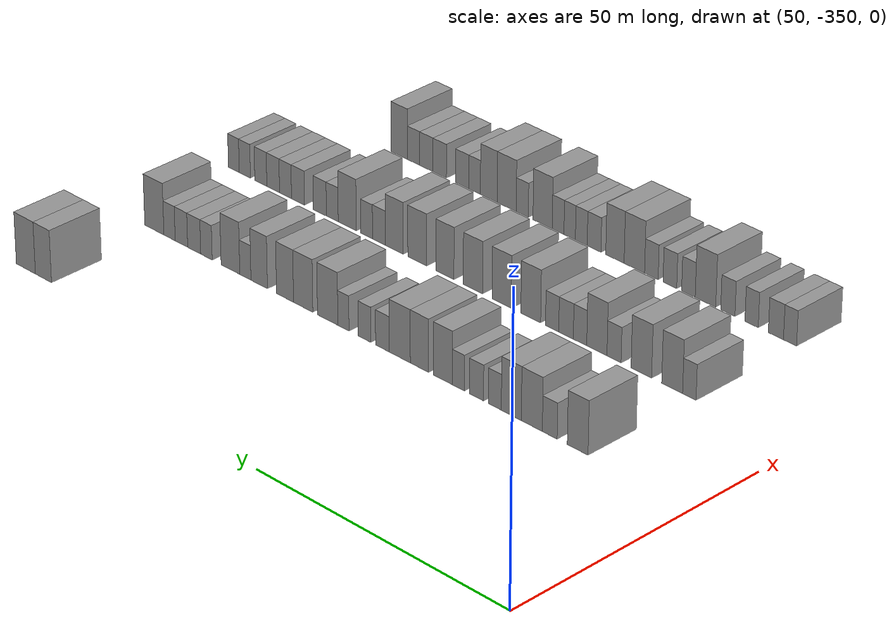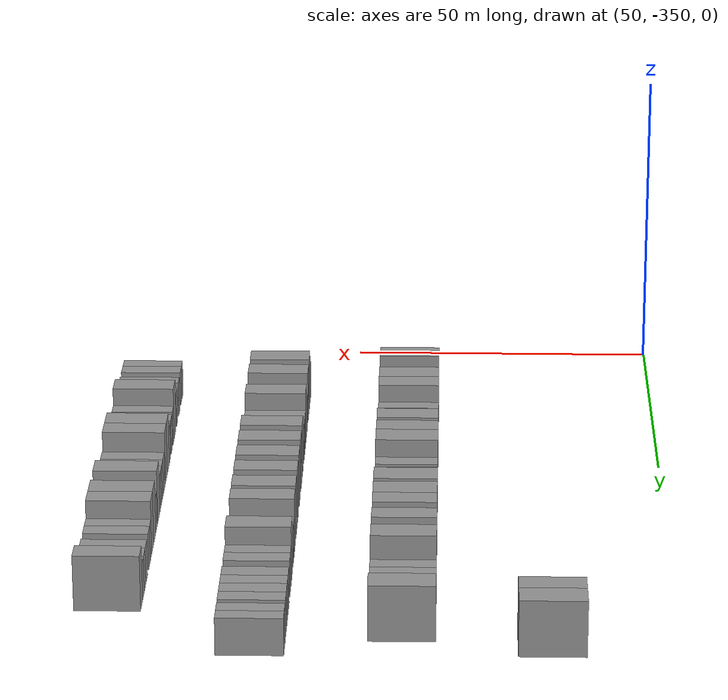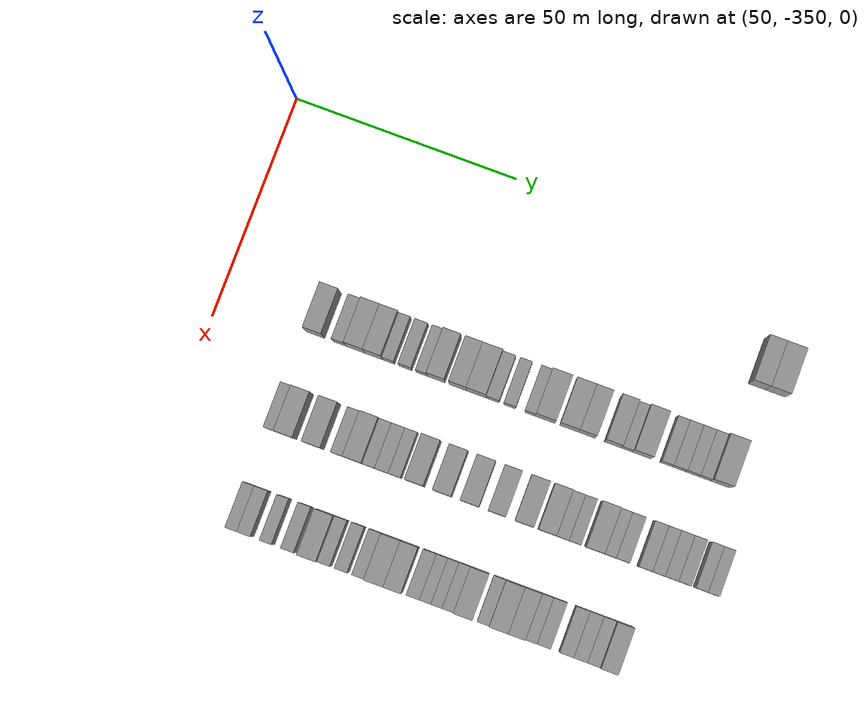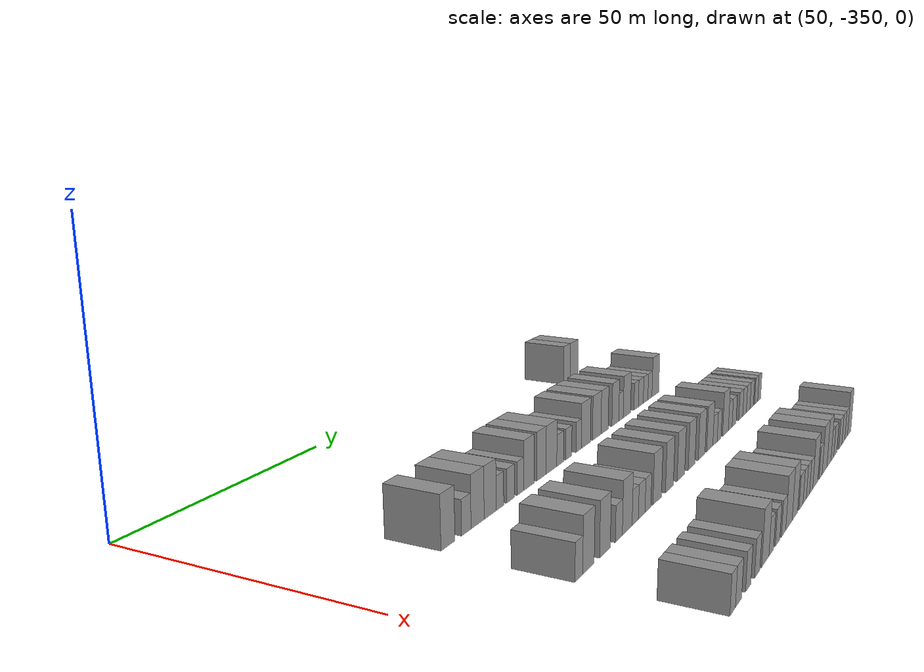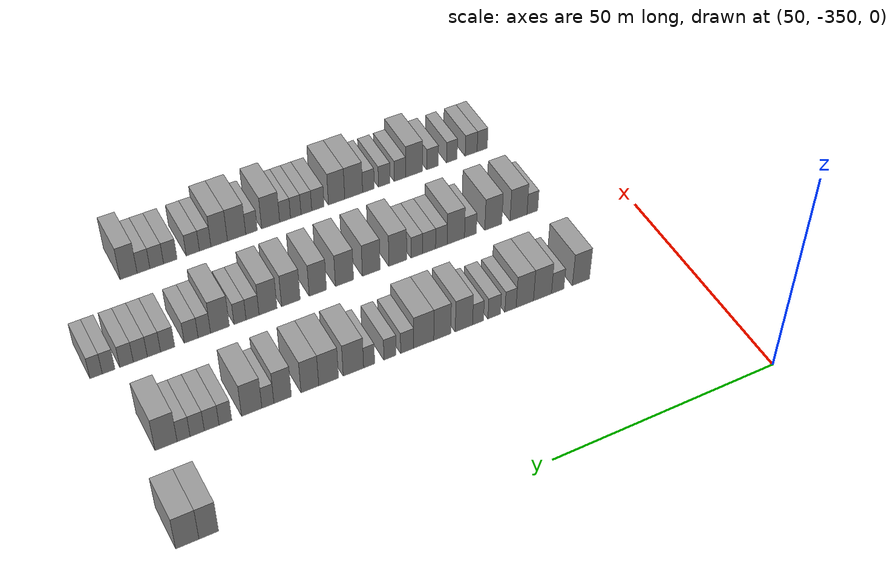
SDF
<sdf version="1.6">
 <world name="default">
  <model name="building_411">
   <static>1</static>
   <pose>69.0000 -237.1948 0 0.000000 0.000000 0.000000</pose>
   <link name="link">
    <pose>0 0 4.50 0 0 0</pose>
    <collision name="collision"><geometry><box><size>10.0000 3.7548 9.0000</size></box></geometry></collision>
    <visual name="visual">
     <cast_shadows>0</cast_shadows>
     <geometry><box><size>10.0000 3.7548 9.0000</size></box></geometry>
     <material>
      <script>
       <uri>model://grey_wall/materials/scripts</uri>
       <uri>model://grey_wall/materials/textures</uri>
       <name>vrc/grey_wall</name>
      </script>
     </material>
    </visual>
   </link>
  </model>
  <model name="building_412">
   <static>1</static>
   <pose>69.0000 -233.0890 0 0.000000 0.000000 0.000000</pose>
   <link name="link">
    <pose>0 0 4.50 0 0 0</pose>
    <collision name="collision"><geometry><box><size>10.0000 4.4567 9.0000</size></box></geometry></collision>
    <visual name="visual">
     <cast_shadows>0</cast_shadows>
     <geometry><box><size>10.0000 4.4567 9.0000</size></box></geometry>
     <material>
      <script>
       <uri>model://grey_wall/materials/scripts</uri>
       <uri>model://grey_wall/materials/textures</uri>
       <name>vrc/grey_wall</name>
      </script>
     </material>
    </visual>
   </link>
  </model>
  <model name="building_571">
   <static>1</static>
   <pose>91.0000 -328.0269 0 0.000000 0.000000 0.000000</pose>
   <link name="link">
    <pose>0 0 4.50 0 0 0</pose>
    <collision name="collision"><geometry><box><size>10.0000 4.0771 9.0000</size></box></geometry></collision>
    <visual name="visual">
     <cast_shadows>0</cast_shadows>
     <geometry><box><size>10.0000 4.0771 9.0000</size></box></geometry>
     <material>
      <script>
       <uri>model://grey_wall/materials/scripts</uri>
       <uri>model://grey_wall/materials/textures</uri>
       <name>vrc/grey_wall</name>
      </script>
     </material>
    </visual>
   </link>
  </model>
  <model name="building_572">
   <static>1</static>
   <pose>91.0000 -322.5203 0 0.000000 0.000000 0.000000</pose>
   <link name="link">
    <pose>0 0 3.00 0 0 0</pose>
    <collision name="collision"><geometry><box><size>10.0000 2.9361 6.0000</size></box></geometry></collision>
    <visual name="visual">
     <cast_shadows>0</cast_shadows>
     <geometry><box><size>10.0000 2.9361 6.0000</size></box></geometry>
     <material>
      <script>
       <uri>model://grey_wall/materials/scripts</uri>
       <uri>model://grey_wall/materials/textures</uri>
       <name>vrc/grey_wall</name>
      </script>
     </material>
    </visual>
   </link>
  </model>
  <model name="building_573">
   <static>1</static>
   <pose>91.0000 -318.9474 0 0.000000 0.000000 0.000000</pose>
   <link name="link">
    <pose>0 0 4.50 0 0 0</pose>
    <collision name="collision"><geometry><box><size>10.0000 4.2098 9.0000</size></box></geometry></collision>
    <visual name="visual">
     <cast_shadows>0</cast_shadows>
     <geometry><box><size>10.0000 4.2098 9.0000</size></box></geometry>
     <material>
      <script>
       <uri>model://grey_wall/materials/scripts</uri>
       <uri>model://grey_wall/materials/textures</uri>
       <name>vrc/grey_wall</name>
      </script>
     </material>
    </visual>
   </link>
  </model>
  <model name="building_574">
   <static>1</static>
   <pose>91.0000 -314.8272 0 0.000000 0.000000 0.000000</pose>
   <link name="link">
    <pose>0 0 4.50 0 0 0</pose>
    <collision name="collision"><geometry><box><size>10.0000 4.0307 9.0000</size></box></geometry></collision>
    <visual name="visual">
     <cast_shadows>0</cast_shadows>
     <geometry><box><size>10.0000 4.0307 9.0000</size></box></geometry>
     <material>
      <script>
       <uri>model://grey_wall/materials/scripts</uri>
       <uri>model://grey_wall/materials/textures</uri>
       <name>vrc/grey_wall</name>
      </script>
     </material>
    </visual>
   </link>
  </model>
  <model name="building_575">
   <static>1</static>
   <pose>91.0000 -311.5122 0 0.000000 0.000000 0.000000</pose>
   <link name="link">
    <pose>0 0 3.00 0 0 0</pose>
    <collision name="collision"><geometry><box><size>10.0000 2.5993 6.0000</size></box></geometry></collision>
    <visual name="visual">
     <cast_shadows>0</cast_shadows>
     <geometry><box><size>10.0000 2.5993 6.0000</size></box></geometry>
     <material>
      <script>
       <uri>model://grey_wall/materials/scripts</uri>
       <uri>model://grey_wall/materials/textures</uri>
       <name>vrc/grey_wall</name>
      </script>
     </material>
    </visual>
   </link>
  </model>
  <model name="building_576">
   <static>1</static>
   <pose>91.0000 -307.7695 0 0.000000 0.000000 0.000000</pose>
   <link name="link">
    <pose>0 0 3.00 0 0 0</pose>
    <collision name="collision"><geometry><box><size>10.0000 2.8862 6.0000</size></box></geometry></collision>
    <visual name="visual">
     <cast_shadows>0</cast_shadows>
     <geometry><box><size>10.0000 2.8862 6.0000</size></box></geometry>
     <material>
      <script>
       <uri>model://grey_wall/materials/scripts</uri>
       <uri>model://grey_wall/materials/textures</uri>
       <name>vrc/grey_wall</name>
      </script>
     </material>
    </visual>
   </link>
  </model>
  <model name="building_577">
   <static>1</static>
   <pose>91.0000 -304.0789 0 0.000000 0.000000 0.000000</pose>
   <link name="link">
    <pose>0 0 3.00 0 0 0</pose>
    <collision name="collision"><geometry><box><size>10.0000 2.4949 6.0000</size></box></geometry></collision>
    <visual name="visual">
     <cast_shadows>0</cast_shadows>
     <geometry><box><size>10.0000 2.4949 6.0000</size></box></geometry>
     <material>
      <script>
       <uri>model://grey_wall/materials/scripts</uri>
       <uri>model://grey_wall/materials/textures</uri>
       <name>vrc/grey_wall</name>
      </script>
     </material>
    </visual>
   </link>
  </model>
  <model name="building_578">
   <static>1</static>
   <pose>91.0000 -300.8722 0 0.000000 0.000000 0.000000</pose>
   <link name="link">
    <pose>0 0 4.50 0 0 0</pose>
    <collision name="collision"><geometry><box><size>10.0000 3.9184 9.0000</size></box></geometry></collision>
    <visual name="visual">
     <cast_shadows>0</cast_shadows>
     <geometry><box><size>10.0000 3.9184 9.0000</size></box></geometry>
     <material>
      <script>
       <uri>model://grey_wall/materials/scripts</uri>
       <uri>model://grey_wall/materials/textures</uri>
       <name>vrc/grey_wall</name>
      </script>
     </material>
    </visual>
   </link>
  </model>
  <model name="building_579">
   <static>1</static>
   <pose>91.0000 -296.0052 0 0.000000 0.000000 0.000000</pose>
   <link name="link">
    <pose>0 0 4.50 0 0 0</pose>
    <collision name="collision"><geometry><box><size>10.0000 3.8156 9.0000</size></box></geometry></collision>
    <visual name="visual">
     <cast_shadows>0</cast_shadows>
     <geometry><box><size>10.0000 3.8156 9.0000</size></box></geometry>
     <material>
      <script>
       <uri>model://grey_wall/materials/scripts</uri>
       <uri>model://grey_wall/materials/textures</uri>
       <name>vrc/grey_wall</name>
      </script>
     </material>
    </visual>
   </link>
  </model>
  <model name="building_580">
   <static>1</static>
   <pose>91.0000 -291.8831 0 0.000000 0.000000 0.000000</pose>
   <link name="link">
    <pose>0 0 4.50 0 0 0</pose>
    <collision name="collision"><geometry><box><size>10.0000 4.4286 9.0000</size></box></geometry></collision>
    <visual name="visual">
     <cast_shadows>0</cast_shadows>
     <geometry><box><size>10.0000 4.4286 9.0000</size></box></geometry>
     <material>
      <script>
       <uri>model://grey_wall/materials/scripts</uri>
       <uri>model://grey_wall/materials/textures</uri>
       <name>vrc/grey_wall</name>
      </script>
     </material>
    </visual>
   </link>
  </model>
  <model name="building_581">
   <static>1</static>
   <pose>91.0000 -288.2181 0 0.000000 0.000000 0.000000</pose>
   <link name="link">
    <pose>0 0 3.00 0 0 0</pose>
    <collision name="collision"><geometry><box><size>10.0000 2.9015 6.0000</size></box></geometry></collision>
    <visual name="visual">
     <cast_shadows>0</cast_shadows>
     <geometry><box><size>10.0000 2.9015 6.0000</size></box></geometry>
     <material>
      <script>
       <uri>model://grey_wall/materials/scripts</uri>
       <uri>model://grey_wall/materials/textures</uri>
       <name>vrc/grey_wall</name>
      </script>
     </material>
    </visual>
   </link>
  </model>
  <model name="building_582">
   <static>1</static>
   <pose>91.0000 -284.4340 0 0.000000 0.000000 0.000000</pose>
   <link name="link">
    <pose>0 0 3.00 0 0 0</pose>
    <collision name="collision"><geometry><box><size>10.0000 2.6668 6.0000</size></box></geometry></collision>
    <visual name="visual">
     <cast_shadows>0</cast_shadows>
     <geometry><box><size>10.0000 2.6668 6.0000</size></box></geometry>
     <material>
      <script>
       <uri>model://grey_wall/materials/scripts</uri>
       <uri>model://grey_wall/materials/textures</uri>
       <name>vrc/grey_wall</name>
      </script>
     </material>
    </visual>
   </link>
  </model>
  <model name="building_583">
   <static>1</static>
   <pose>91.0000 -279.8989 0 0.000000 0.000000 0.000000</pose>
   <link name="link">
    <pose>0 0 3.00 0 0 0</pose>
    <collision name="collision"><geometry><box><size>10.0000 2.4034 6.0000</size></box></geometry></collision>
    <visual name="visual">
     <cast_shadows>0</cast_shadows>
     <geometry><box><size>10.0000 2.4034 6.0000</size></box></geometry>
     <material>
      <script>
       <uri>model://grey_wall/materials/scripts</uri>
       <uri>model://grey_wall/materials/textures</uri>
       <name>vrc/grey_wall</name>
      </script>
     </material>
    </visual>
   </link>
  </model>
  <model name="building_584">
   <static>1</static>
   <pose>91.0000 -276.4935 0 0.000000 0.000000 0.000000</pose>
   <link name="link">
    <pose>0 0 4.50 0 0 0</pose>
    <collision name="collision"><geometry><box><size>10.0000 4.4073 9.0000</size></box></geometry></collision>
    <visual name="visual">
     <cast_shadows>0</cast_shadows>
     <geometry><box><size>10.0000 4.4073 9.0000</size></box></geometry>
     <material>
      <script>
       <uri>model://grey_wall/materials/scripts</uri>
       <uri>model://grey_wall/materials/textures</uri>
       <name>vrc/grey_wall</name>
      </script>
     </material>
    </visual>
   </link>
  </model>
  <model name="building_585">
   <static>1</static>
   <pose>91.0000 -271.1800 0 0.000000 0.000000 0.000000</pose>
   <link name="link">
    <pose>0 0 4.50 0 0 0</pose>
    <collision name="collision"><geometry><box><size>10.0000 4.2196 9.0000</size></box></geometry></collision>
    <visual name="visual">
     <cast_shadows>0</cast_shadows>
     <geometry><box><size>10.0000 4.2196 9.0000</size></box></geometry>
     <material>
      <script>
       <uri>model://grey_wall/materials/scripts</uri>
       <uri>model://grey_wall/materials/textures</uri>
       <name>vrc/grey_wall</name>
      </script>
     </material>
    </visual>
   </link>
  </model>
  <model name="building_586">
   <static>1</static>
   <pose>91.0000 -267.1969 0 0.000000 0.000000 0.000000</pose>
   <link name="link">
    <pose>0 0 4.50 0 0 0</pose>
    <collision name="collision"><geometry><box><size>10.0000 3.7467 9.0000</size></box></geometry></collision>
    <visual name="visual">
     <cast_shadows>0</cast_shadows>
     <geometry><box><size>10.0000 3.7467 9.0000</size></box></geometry>
     <material>
      <script>
       <uri>model://grey_wall/materials/scripts</uri>
       <uri>model://grey_wall/materials/textures</uri>
       <name>vrc/grey_wall</name>
      </script>
     </material>
    </visual>
   </link>
  </model>
  <model name="building_587">
   <static>1</static>
   <pose>91.0000 -261.4858 0 0.000000 0.000000 0.000000</pose>
   <link name="link">
    <pose>0 0 4.50 0 0 0</pose>
    <collision name="collision"><geometry><box><size>10.0000 3.6754 9.0000</size></box></geometry></collision>
    <visual name="visual">
     <cast_shadows>0</cast_shadows>
     <geometry><box><size>10.0000 3.6754 9.0000</size></box></geometry>
     <material>
      <script>
       <uri>model://grey_wall/materials/scripts</uri>
       <uri>model://grey_wall/materials/textures</uri>
       <name>vrc/grey_wall</name>
      </script>
     </material>
    </visual>
   </link>
  </model>
  <model name="building_588">
   <static>1</static>
   <pose>91.0000 -258.4003 0 0.000000 0.000000 0.000000</pose>
   <link name="link">
    <pose>0 0 3.00 0 0 0</pose>
    <collision name="collision"><geometry><box><size>10.0000 2.4956 6.0000</size></box></geometry></collision>
    <visual name="visual">
     <cast_shadows>0</cast_shadows>
     <geometry><box><size>10.0000 2.4956 6.0000</size></box></geometry>
     <material>
      <script>
       <uri>model://grey_wall/materials/scripts</uri>
       <uri>model://grey_wall/materials/textures</uri>
       <name>vrc/grey_wall</name>
      </script>
     </material>
    </visual>
   </link>
  </model>
  <model name="building_589">
   <static>1</static>
   <pose>91.0000 -255.0483 0 0.000000 0.000000 0.000000</pose>
   <link name="link">
    <pose>0 0 4.50 0 0 0</pose>
    <collision name="collision"><geometry><box><size>10.0000 4.2083 9.0000</size></box></geometry></collision>
    <visual name="visual">
     <cast_shadows>0</cast_shadows>
     <geometry><box><size>10.0000 4.2083 9.0000</size></box></geometry>
     <material>
      <script>
       <uri>model://grey_wall/materials/scripts</uri>
       <uri>model://grey_wall/materials/textures</uri>
       <name>vrc/grey_wall</name>
      </script>
     </material>
    </visual>
   </link>
  </model>
  <model name="building_590">
   <static>1</static>
   <pose>91.0000 -249.6351 0 0.000000 0.000000 0.000000</pose>
   <link name="link">
    <pose>0 0 3.00 0 0 0</pose>
    <collision name="collision"><geometry><box><size>10.0000 2.6181 6.0000</size></box></geometry></collision>
    <visual name="visual">
     <cast_shadows>0</cast_shadows>
     <geometry><box><size>10.0000 2.6181 6.0000</size></box></geometry>
     <material>
      <script>
       <uri>model://grey_wall/materials/scripts</uri>
       <uri>model://grey_wall/materials/textures</uri>
       <name>vrc/grey_wall</name>
      </script>
     </material>
    </visual>
   </link>
  </model>
  <model name="building_591">
   <static>1</static>
   <pose>91.0000 -246.8352 0 0.000000 0.000000 0.000000</pose>
   <link name="link">
    <pose>0 0 3.00 0 0 0</pose>
    <collision name="collision"><geometry><box><size>10.0000 2.9816 6.0000</size></box></geometry></collision>
    <visual name="visual">
     <cast_shadows>0</cast_shadows>
     <geometry><box><size>10.0000 2.9816 6.0000</size></box></geometry>
     <material>
      <script>
       <uri>model://grey_wall/materials/scripts</uri>
       <uri>model://grey_wall/materials/textures</uri>
       <name>vrc/grey_wall</name>
      </script>
     </material>
    </visual>
   </link>
  </model>
  <model name="building_592">
   <static>1</static>
   <pose>91.0000 -243.9129 0 0.000000 0.000000 0.000000</pose>
   <link name="link">
    <pose>0 0 3.00 0 0 0</pose>
    <collision name="collision"><geometry><box><size>10.0000 2.8630 6.0000</size></box></geometry></collision>
    <visual name="visual">
     <cast_shadows>0</cast_shadows>
     <geometry><box><size>10.0000 2.8630 6.0000</size></box></geometry>
     <material>
      <script>
       <uri>model://grey_wall/materials/scripts</uri>
       <uri>model://grey_wall/materials/textures</uri>
       <name>vrc/grey_wall</name>
      </script>
     </material>
    </visual>
   </link>
  </model>
  <model name="building_593">
   <static>1</static>
   <pose>91.0000 -241.1825 0 0.000000 0.000000 0.000000</pose>
   <link name="link">
    <pose>0 0 3.00 0 0 0</pose>
    <collision name="collision"><geometry><box><size>10.0000 2.5979 6.0000</size></box></geometry></collision>
    <visual name="visual">
     <cast_shadows>0</cast_shadows>
     <geometry><box><size>10.0000 2.5979 6.0000</size></box></geometry>
     <material>
      <script>
       <uri>model://grey_wall/materials/scripts</uri>
       <uri>model://grey_wall/materials/textures</uri>
       <name>vrc/grey_wall</name>
      </script>
     </material>
    </visual>
   </link>
  </model>
  <model name="building_594">
   <static>1</static>
   <pose>91.0000 -237.6687 0 0.000000 0.000000 0.000000</pose>
   <link name="link">
    <pose>0 0 4.50 0 0 0</pose>
    <collision name="collision"><geometry><box><size>10.0000 4.4295 9.0000</size></box></geometry></collision>
    <visual name="visual">
     <cast_shadows>0</cast_shadows>
     <geometry><box><size>10.0000 4.4295 9.0000</size></box></geometry>
     <material>
      <script>
       <uri>model://grey_wall/materials/scripts</uri>
       <uri>model://grey_wall/materials/textures</uri>
       <name>vrc/grey_wall</name>
      </script>
     </material>
    </visual>
   </link>
  </model>
  <model name="building_755">
   <static>1</static>
   <pose>113.0000 -329.3230 0 0.000000 0.000000 0.000000</pose>
   <link name="link">
    <pose>0 0 3.00 0 0 0</pose>
    <collision name="collision"><geometry><box><size>10.0000 2.6471 6.0000</size></box></geometry></collision>
    <visual name="visual">
     <cast_shadows>0</cast_shadows>
     <geometry><box><size>10.0000 2.6471 6.0000</size></box></geometry>
     <material>
      <script>
       <uri>model://grey_wall/materials/scripts</uri>
       <uri>model://grey_wall/materials/textures</uri>
       <name>vrc/grey_wall</name>
      </script>
     </material>
    </visual>
   </link>
  </model>
  <model name="building_756">
   <static>1</static>
   <pose>113.0000 -325.9396 0 0.000000 0.000000 0.000000</pose>
   <link name="link">
    <pose>0 0 4.50 0 0 0</pose>
    <collision name="collision"><geometry><box><size>10.0000 4.1198 9.0000</size></box></geometry></collision>
    <visual name="visual">
     <cast_shadows>0</cast_shadows>
     <geometry><box><size>10.0000 4.1198 9.0000</size></box></geometry>
     <material>
      <script>
       <uri>model://grey_wall/materials/scripts</uri>
       <uri>model://grey_wall/materials/textures</uri>
       <name>vrc/grey_wall</name>
      </script>
     </material>
    </visual>
   </link>
  </model>
  <model name="building_757">
   <static>1</static>
   <pose>113.0000 -319.8304 0 0.000000 0.000000 0.000000</pose>
   <link name="link">
    <pose>0 0 4.50 0 0 0</pose>
    <collision name="collision"><geometry><box><size>10.0000 4.0986 9.0000</size></box></geometry></collision>
    <visual name="visual">
     <cast_shadows>0</cast_shadows>
     <geometry><box><size>10.0000 4.0986 9.0000</size></box></geometry>
     <material>
      <script>
       <uri>model://grey_wall/materials/scripts</uri>
       <uri>model://grey_wall/materials/textures</uri>
       <name>vrc/grey_wall</name>
      </script>
     </material>
    </visual>
   </link>
  </model>
  <model name="building_758">
   <static>1</static>
   <pose>113.0000 -314.3562 0 0.000000 0.000000 0.000000</pose>
   <link name="link">
    <pose>0 0 3.00 0 0 0</pose>
    <collision name="collision"><geometry><box><size>10.0000 2.8499 6.0000</size></box></geometry></collision>
    <visual name="visual">
     <cast_shadows>0</cast_shadows>
     <geometry><box><size>10.0000 2.8499 6.0000</size></box></geometry>
     <material>
      <script>
       <uri>model://grey_wall/materials/scripts</uri>
       <uri>model://grey_wall/materials/textures</uri>
       <name>vrc/grey_wall</name>
      </script>
     </material>
    </visual>
   </link>
  </model>
  <model name="building_759">
   <static>1</static>
   <pose>113.0000 -310.8762 0 0.000000 0.000000 0.000000</pose>
   <link name="link">
    <pose>0 0 4.50 0 0 0</pose>
    <collision name="collision"><geometry><box><size>10.0000 4.1100 9.0000</size></box></geometry></collision>
    <visual name="visual">
     <cast_shadows>0</cast_shadows>
     <geometry><box><size>10.0000 4.1100 9.0000</size></box></geometry>
     <material>
      <script>
       <uri>model://grey_wall/materials/scripts</uri>
       <uri>model://grey_wall/materials/textures</uri>
       <name>vrc/grey_wall</name>
      </script>
     </material>
    </visual>
   </link>
  </model>
  <model name="building_760">
   <static>1</static>
   <pose>113.0000 -307.4540 0 0.000000 0.000000 0.000000</pose>
   <link name="link">
    <pose>0 0 3.00 0 0 0</pose>
    <collision name="collision"><geometry><box><size>10.0000 2.7344 6.0000</size></box></geometry></collision>
    <visual name="visual">
     <cast_shadows>0</cast_shadows>
     <geometry><box><size>10.0000 2.7344 6.0000</size></box></geometry>
     <material>
      <script>
       <uri>model://grey_wall/materials/scripts</uri>
       <uri>model://grey_wall/materials/textures</uri>
       <name>vrc/grey_wall</name>
      </script>
     </material>
    </visual>
   </link>
  </model>
  <model name="building_761">
   <static>1</static>
   <pose>113.0000 -304.5899 0 0.000000 0.000000 0.000000</pose>
   <link name="link">
    <pose>0 0 3.00 0 0 0</pose>
    <collision name="collision"><geometry><box><size>10.0000 2.9938 6.0000</size></box></geometry></collision>
    <visual name="visual">
     <cast_shadows>0</cast_shadows>
     <geometry><box><size>10.0000 2.9938 6.0000</size></box></geometry>
     <material>
      <script>
       <uri>model://grey_wall/materials/scripts</uri>
       <uri>model://grey_wall/materials/textures</uri>
       <name>vrc/grey_wall</name>
      </script>
     </material>
    </visual>
   </link>
  </model>
  <model name="building_762">
   <static>1</static>
   <pose>113.0000 -301.7258 0 0.000000 0.000000 0.000000</pose>
   <link name="link">
    <pose>0 0 3.00 0 0 0</pose>
    <collision name="collision"><geometry><box><size>10.0000 2.7342 6.0000</size></box></geometry></collision>
    <visual name="visual">
     <cast_shadows>0</cast_shadows>
     <geometry><box><size>10.0000 2.7342 6.0000</size></box></geometry>
     <material>
      <script>
       <uri>model://grey_wall/materials/scripts</uri>
       <uri>model://grey_wall/materials/textures</uri>
       <name>vrc/grey_wall</name>
      </script>
     </material>
    </visual>
   </link>
  </model>
  <model name="building_763">
   <static>1</static>
   <pose>113.0000 -297.2979 0 0.000000 0.000000 0.000000</pose>
   <link name="link">
    <pose>0 0 4.50 0 0 0</pose>
    <collision name="collision"><geometry><box><size>10.0000 4.1217 9.0000</size></box></geometry></collision>
    <visual name="visual">
     <cast_shadows>0</cast_shadows>
     <geometry><box><size>10.0000 4.1217 9.0000</size></box></geometry>
     <material>
      <script>
       <uri>model://grey_wall/materials/scripts</uri>
       <uri>model://grey_wall/materials/textures</uri>
       <name>vrc/grey_wall</name>
      </script>
     </material>
    </visual>
   </link>
  </model>
  <model name="building_764">
   <static>1</static>
   <pose>113.0000 -291.2049 0 0.000000 0.000000 0.000000</pose>
   <link name="link">
    <pose>0 0 4.50 0 0 0</pose>
    <collision name="collision"><geometry><box><size>10.0000 4.0642 9.0000</size></box></geometry></collision>
    <visual name="visual">
     <cast_shadows>0</cast_shadows>
     <geometry><box><size>10.0000 4.0642 9.0000</size></box></geometry>
     <material>
      <script>
       <uri>model://grey_wall/materials/scripts</uri>
       <uri>model://grey_wall/materials/textures</uri>
       <name>vrc/grey_wall</name>
      </script>
     </material>
    </visual>
   </link>
  </model>
  <model name="building_765">
   <static>1</static>
   <pose>113.0000 -285.1212 0 0.000000 0.000000 0.000000</pose>
   <link name="link">
    <pose>0 0 4.50 0 0 0</pose>
    <collision name="collision"><geometry><box><size>10.0000 4.1030 9.0000</size></box></geometry></collision>
    <visual name="visual">
     <cast_shadows>0</cast_shadows>
     <geometry><box><size>10.0000 4.1030 9.0000</size></box></geometry>
     <material>
      <script>
       <uri>model://grey_wall/materials/scripts</uri>
       <uri>model://grey_wall/materials/textures</uri>
       <name>vrc/grey_wall</name>
      </script>
     </material>
    </visual>
   </link>
  </model>
  <model name="building_766">
   <static>1</static>
   <pose>113.0000 -279.1335 0 0.000000 0.000000 0.000000</pose>
   <link name="link">
    <pose>0 0 4.50 0 0 0</pose>
    <collision name="collision"><geometry><box><size>10.0000 3.8724 9.0000</size></box></geometry></collision>
    <visual name="visual">
     <cast_shadows>0</cast_shadows>
     <geometry><box><size>10.0000 3.8724 9.0000</size></box></geometry>
     <material>
      <script>
       <uri>model://grey_wall/materials/scripts</uri>
       <uri>model://grey_wall/materials/textures</uri>
       <name>vrc/grey_wall</name>
      </script>
     </material>
    </visual>
   </link>
  </model>
  <model name="building_767">
   <static>1</static>
   <pose>113.0000 -273.1442 0 0.000000 0.000000 0.000000</pose>
   <link name="link">
    <pose>0 0 4.50 0 0 0</pose>
    <collision name="collision"><geometry><box><size>10.0000 4.1061 9.0000</size></box></geometry></collision>
    <visual name="visual">
     <cast_shadows>0</cast_shadows>
     <geometry><box><size>10.0000 4.1061 9.0000</size></box></geometry>
     <material>
      <script>
       <uri>model://grey_wall/materials/scripts</uri>
       <uri>model://grey_wall/materials/textures</uri>
       <name>vrc/grey_wall</name>
      </script>
     </material>
    </visual>
   </link>
  </model>
  <model name="building_768">
   <static>1</static>
   <pose>113.0000 -268.1210 0 0.000000 0.000000 0.000000</pose>
   <link name="link">
    <pose>0 0 4.50 0 0 0</pose>
    <collision name="collision"><geometry><box><size>10.0000 3.9403 9.0000</size></box></geometry></collision>
    <visual name="visual">
     <cast_shadows>0</cast_shadows>
     <geometry><box><size>10.0000 3.9403 9.0000</size></box></geometry>
     <material>
      <script>
       <uri>model://grey_wall/materials/scripts</uri>
       <uri>model://grey_wall/materials/textures</uri>
       <name>vrc/grey_wall</name>
      </script>
     </material>
    </visual>
   </link>
  </model>
  <model name="building_769">
   <static>1</static>
   <pose>113.0000 -264.7407 0 0.000000 0.000000 0.000000</pose>
   <link name="link">
    <pose>0 0 3.00 0 0 0</pose>
    <collision name="collision"><geometry><box><size>10.0000 2.8204 6.0000</size></box></geometry></collision>
    <visual name="visual">
     <cast_shadows>0</cast_shadows>
     <geometry><box><size>10.0000 2.8204 6.0000</size></box></geometry>
     <material>
      <script>
       <uri>model://grey_wall/materials/scripts</uri>
       <uri>model://grey_wall/materials/textures</uri>
       <name>vrc/grey_wall</name>
      </script>
     </material>
    </visual>
   </link>
  </model>
  <model name="building_770">
   <static>1</static>
   <pose>113.0000 -262.0262 0 0.000000 0.000000 0.000000</pose>
   <link name="link">
    <pose>0 0 3.00 0 0 0</pose>
    <collision name="collision"><geometry><box><size>10.0000 2.6085 6.0000</size></box></geometry></collision>
    <visual name="visual">
     <cast_shadows>0</cast_shadows>
     <geometry><box><size>10.0000 2.6085 6.0000</size></box></geometry>
     <material>
      <script>
       <uri>model://grey_wall/materials/scripts</uri>
       <uri>model://grey_wall/materials/textures</uri>
       <name>vrc/grey_wall</name>
      </script>
     </material>
    </visual>
   </link>
  </model>
  <model name="building_771">
   <static>1</static>
   <pose>113.0000 -257.7062 0 0.000000 0.000000 0.000000</pose>
   <link name="link">
    <pose>0 0 4.50 0 0 0</pose>
    <collision name="collision"><geometry><box><size>10.0000 4.0316 9.0000</size></box></geometry></collision>
    <visual name="visual">
     <cast_shadows>0</cast_shadows>
     <geometry><box><size>10.0000 4.0316 9.0000</size></box></geometry>
     <material>
      <script>
       <uri>model://grey_wall/materials/scripts</uri>
       <uri>model://grey_wall/materials/textures</uri>
       <name>vrc/grey_wall</name>
      </script>
     </material>
    </visual>
   </link>
  </model>
  <model name="building_772">
   <static>1</static>
   <pose>113.0000 -254.3630 0 0.000000 0.000000 0.000000</pose>
   <link name="link">
    <pose>0 0 3.00 0 0 0</pose>
    <collision name="collision"><geometry><box><size>10.0000 2.6547 6.0000</size></box></geometry></collision>
    <visual name="visual">
     <cast_shadows>0</cast_shadows>
     <geometry><box><size>10.0000 2.6547 6.0000</size></box></geometry>
     <material>
      <script>
       <uri>model://grey_wall/materials/scripts</uri>
       <uri>model://grey_wall/materials/textures</uri>
       <name>vrc/grey_wall</name>
      </script>
     </material>
    </visual>
   </link>
  </model>
  <model name="building_773">
   <static>1</static>
   <pose>113.0000 -251.5645 0 0.000000 0.000000 0.000000</pose>
   <link name="link">
    <pose>0 0 3.00 0 0 0</pose>
    <collision name="collision"><geometry><box><size>10.0000 2.9424 6.0000</size></box></geometry></collision>
    <visual name="visual">
     <cast_shadows>0</cast_shadows>
     <geometry><box><size>10.0000 2.9424 6.0000</size></box></geometry>
     <material>
      <script>
       <uri>model://grey_wall/materials/scripts</uri>
       <uri>model://grey_wall/materials/textures</uri>
       <name>vrc/grey_wall</name>
      </script>
     </material>
    </visual>
   </link>
  </model>
  <model name="building_774">
   <static>1</static>
   <pose>113.0000 -246.6026 0 0.000000 0.000000 0.000000</pose>
   <link name="link">
    <pose>0 0 3.00 0 0 0</pose>
    <collision name="collision"><geometry><box><size>10.0000 2.9816 6.0000</size></box></geometry></collision>
    <visual name="visual">
     <cast_shadows>0</cast_shadows>
     <geometry><box><size>10.0000 2.9816 6.0000</size></box></geometry>
     <material>
      <script>
       <uri>model://grey_wall/materials/scripts</uri>
       <uri>model://grey_wall/materials/textures</uri>
       <name>vrc/grey_wall</name>
      </script>
     </material>
    </visual>
   </link>
  </model>
  <model name="building_775">
   <static>1</static>
   <pose>113.0000 -243.7395 0 0.000000 0.000000 0.000000</pose>
   <link name="link">
    <pose>0 0 3.00 0 0 0</pose>
    <collision name="collision"><geometry><box><size>10.0000 2.7446 6.0000</size></box></geometry></collision>
    <visual name="visual">
     <cast_shadows>0</cast_shadows>
     <geometry><box><size>10.0000 2.7446 6.0000</size></box></geometry>
     <material>
      <script>
       <uri>model://grey_wall/materials/scripts</uri>
       <uri>model://grey_wall/materials/textures</uri>
       <name>vrc/grey_wall</name>
      </script>
     </material>
    </visual>
   </link>
  </model>
  <model name="building_776">
   <static>1</static>
   <pose>113.0000 -240.9069 0 0.000000 0.000000 0.000000</pose>
   <link name="link">
    <pose>0 0 3.00 0 0 0</pose>
    <collision name="collision"><geometry><box><size>10.0000 2.9207 6.0000</size></box></geometry></collision>
    <visual name="visual">
     <cast_shadows>0</cast_shadows>
     <geometry><box><size>10.0000 2.9207 6.0000</size></box></geometry>
     <material>
      <script>
       <uri>model://grey_wall/materials/scripts</uri>
       <uri>model://grey_wall/materials/textures</uri>
       <name>vrc/grey_wall</name>
      </script>
     </material>
    </visual>
   </link>
  </model>
  <model name="building_777">
   <static>1</static>
   <pose>113.0000 -238.0486 0 0.000000 0.000000 0.000000</pose>
   <link name="link">
    <pose>0 0 3.00 0 0 0</pose>
    <collision name="collision"><geometry><box><size>10.0000 2.7958 6.0000</size></box></geometry></collision>
    <visual name="visual">
     <cast_shadows>0</cast_shadows>
     <geometry><box><size>10.0000 2.7958 6.0000</size></box></geometry>
     <material>
      <script>
       <uri>model://grey_wall/materials/scripts</uri>
       <uri>model://grey_wall/materials/textures</uri>
       <name>vrc/grey_wall</name>
      </script>
     </material>
    </visual>
   </link>
  </model>
  <model name="building_778">
   <static>1</static>
   <pose>113.0000 -234.3490 0 0.000000 0.000000 0.000000</pose>
   <link name="link">
    <pose>0 0 3.00 0 0 0</pose>
    <collision name="collision"><geometry><box><size>10.0000 2.6035 6.0000</size></box></geometry></collision>
    <visual name="visual">
     <cast_shadows>0</cast_shadows>
     <geometry><box><size>10.0000 2.6035 6.0000</size></box></geometry>
     <material>
      <script>
       <uri>model://grey_wall/materials/scripts</uri>
       <uri>model://grey_wall/materials/textures</uri>
       <name>vrc/grey_wall</name>
      </script>
     </material>
    </visual>
   </link>
  </model>
  <model name="building_779">
   <static>1</static>
   <pose>113.0000 -231.7825 0 0.000000 0.000000 0.000000</pose>
   <link name="link">
    <pose>0 0 3.00 0 0 0</pose>
    <collision name="collision"><geometry><box><size>10.0000 2.5296 6.0000</size></box></geometry></collision>
    <visual name="visual">
     <cast_shadows>0</cast_shadows>
     <geometry><box><size>10.0000 2.5296 6.0000</size></box></geometry>
     <material>
      <script>
       <uri>model://grey_wall/materials/scripts</uri>
       <uri>model://grey_wall/materials/textures</uri>
       <name>vrc/grey_wall</name>
      </script>
     </material>
    </visual>
   </link>
  </model>
  <model name="building_945">
   <static>1</static>
   <pose>135.0000 -329.3028 0 0.000000 0.000000 0.000000</pose>
   <link name="link">
    <pose>0 0 3.00 0 0 0</pose>
    <collision name="collision"><geometry><box><size>10.0000 2.5786 6.0000</size></box></geometry></collision>
    <visual name="visual">
     <cast_shadows>0</cast_shadows>
     <geometry><box><size>10.0000 2.5786 6.0000</size></box></geometry>
     <material>
      <script>
       <uri>model://grey_wall/materials/scripts</uri>
       <uri>model://grey_wall/materials/textures</uri>
       <name>vrc/grey_wall</name>
      </script>
     </material>
    </visual>
   </link>
  </model>
  <model name="building_946">
   <static>1</static>
   <pose>135.0000 -326.5217 0 0.000000 0.000000 0.000000</pose>
   <link name="link">
    <pose>0 0 3.00 0 0 0</pose>
    <collision name="collision"><geometry><box><size>10.0000 2.9836 6.0000</size></box></geometry></collision>
    <visual name="visual">
     <cast_shadows>0</cast_shadows>
     <geometry><box><size>10.0000 2.9836 6.0000</size></box></geometry>
     <material>
      <script>
       <uri>model://grey_wall/materials/scripts</uri>
       <uri>model://grey_wall/materials/textures</uri>
       <name>vrc/grey_wall</name>
      </script>
     </material>
    </visual>
   </link>
  </model>
  <model name="building_947">
   <static>1</static>
   <pose>135.0000 -321.7038 0 0.000000 0.000000 0.000000</pose>
   <link name="link">
    <pose>0 0 3.00 0 0 0</pose>
    <collision name="collision"><geometry><box><size>10.0000 2.6521 6.0000</size></box></geometry></collision>
    <visual name="visual">
     <cast_shadows>0</cast_shadows>
     <geometry><box><size>10.0000 2.6521 6.0000</size></box></geometry>
     <material>
      <script>
       <uri>model://grey_wall/materials/scripts</uri>
       <uri>model://grey_wall/materials/textures</uri>
       <name>vrc/grey_wall</name>
      </script>
     </material>
    </visual>
   </link>
  </model>
  <model name="building_948">
   <static>1</static>
   <pose>135.0000 -316.9448 0 0.000000 0.000000 0.000000</pose>
   <link name="link">
    <pose>0 0 3.00 0 0 0</pose>
    <collision name="collision"><geometry><box><size>10.0000 2.8660 6.0000</size></box></geometry></collision>
    <visual name="visual">
     <cast_shadows>0</cast_shadows>
     <geometry><box><size>10.0000 2.8660 6.0000</size></box></geometry>
     <material>
      <script>
       <uri>model://grey_wall/materials/scripts</uri>
       <uri>model://grey_wall/materials/textures</uri>
       <name>vrc/grey_wall</name>
      </script>
     </material>
    </visual>
   </link>
  </model>
  <model name="building_949">
   <static>1</static>
   <pose>135.0000 -312.4325 0 0.000000 0.000000 0.000000</pose>
   <link name="link">
    <pose>0 0 4.50 0 0 0</pose>
    <collision name="collision"><geometry><box><size>10.0000 4.1587 9.0000</size></box></geometry></collision>
    <visual name="visual">
     <cast_shadows>0</cast_shadows>
     <geometry><box><size>10.0000 4.1587 9.0000</size></box></geometry>
     <material>
      <script>
       <uri>model://grey_wall/materials/scripts</uri>
       <uri>model://grey_wall/materials/textures</uri>
       <name>vrc/grey_wall</name>
      </script>
     </material>
    </visual>
   </link>
  </model>
  <model name="building_950">
   <static>1</static>
   <pose>135.0000 -308.9680 0 0.000000 0.000000 0.000000</pose>
   <link name="link">
    <pose>0 0 3.00 0 0 0</pose>
    <collision name="collision"><geometry><box><size>10.0000 2.7702 6.0000</size></box></geometry></collision>
    <visual name="visual">
     <cast_shadows>0</cast_shadows>
     <geometry><box><size>10.0000 2.7702 6.0000</size></box></geometry>
     <material>
      <script>
       <uri>model://grey_wall/materials/scripts</uri>
       <uri>model://grey_wall/materials/textures</uri>
       <name>vrc/grey_wall</name>
      </script>
     </material>
    </visual>
   </link>
  </model>
  <model name="building_951">
   <static>1</static>
   <pose>135.0000 -305.1782 0 0.000000 0.000000 0.000000</pose>
   <link name="link">
    <pose>0 0 3.00 0 0 0</pose>
    <collision name="collision"><geometry><box><size>10.0000 2.8093 6.0000</size></box></geometry></collision>
    <visual name="visual">
     <cast_shadows>0</cast_shadows>
     <geometry><box><size>10.0000 2.8093 6.0000</size></box></geometry>
     <material>
      <script>
       <uri>model://grey_wall/materials/scripts</uri>
       <uri>model://grey_wall/materials/textures</uri>
       <name>vrc/grey_wall</name>
      </script>
     </material>
    </visual>
   </link>
  </model>
  <model name="building_952">
   <static>1</static>
   <pose>135.0000 -301.3658 0 0.000000 0.000000 0.000000</pose>
   <link name="link">
    <pose>0 0 3.00 0 0 0</pose>
    <collision name="collision"><geometry><box><size>10.0000 2.8156 6.0000</size></box></geometry></collision>
    <visual name="visual">
     <cast_shadows>0</cast_shadows>
     <geometry><box><size>10.0000 2.8156 6.0000</size></box></geometry>
     <material>
      <script>
       <uri>model://grey_wall/materials/scripts</uri>
       <uri>model://grey_wall/materials/textures</uri>
       <name>vrc/grey_wall</name>
      </script>
     </material>
    </visual>
   </link>
  </model>
  <model name="building_953">
   <static>1</static>
   <pose>135.0000 -297.8292 0 0.000000 0.000000 0.000000</pose>
   <link name="link">
    <pose>0 0 4.50 0 0 0</pose>
    <collision name="collision"><geometry><box><size>10.0000 4.2577 9.0000</size></box></geometry></collision>
    <visual name="visual">
     <cast_shadows>0</cast_shadows>
     <geometry><box><size>10.0000 4.2577 9.0000</size></box></geometry>
     <material>
      <script>
       <uri>model://grey_wall/materials/scripts</uri>
       <uri>model://grey_wall/materials/textures</uri>
       <name>vrc/grey_wall</name>
      </script>
     </material>
    </visual>
   </link>
  </model>
  <model name="building_954">
   <static>1</static>
   <pose>135.0000 -293.7761 0 0.000000 0.000000 0.000000</pose>
   <link name="link">
    <pose>0 0 4.50 0 0 0</pose>
    <collision name="collision"><geometry><box><size>10.0000 3.8485 9.0000</size></box></geometry></collision>
    <visual name="visual">
     <cast_shadows>0</cast_shadows>
     <geometry><box><size>10.0000 3.8485 9.0000</size></box></geometry>
     <material>
      <script>
       <uri>model://grey_wall/materials/scripts</uri>
       <uri>model://grey_wall/materials/textures</uri>
       <name>vrc/grey_wall</name>
      </script>
     </material>
    </visual>
   </link>
  </model>
  <model name="building_955">
   <static>1</static>
   <pose>135.0000 -289.3946 0 0.000000 0.000000 0.000000</pose>
   <link name="link">
    <pose>0 0 3.00 0 0 0</pose>
    <collision name="collision"><geometry><box><size>10.0000 2.9144 6.0000</size></box></geometry></collision>
    <visual name="visual">
     <cast_shadows>0</cast_shadows>
     <geometry><box><size>10.0000 2.9144 6.0000</size></box></geometry>
     <material>
      <script>
       <uri>model://grey_wall/materials/scripts</uri>
       <uri>model://grey_wall/materials/textures</uri>
       <name>vrc/grey_wall</name>
      </script>
     </material>
    </visual>
   </link>
  </model>
  <model name="building_956">
   <static>1</static>
   <pose>135.0000 -286.6862 0 0.000000 0.000000 0.000000</pose>
   <link name="link">
    <pose>0 0 3.00 0 0 0</pose>
    <collision name="collision"><geometry><box><size>10.0000 2.5023 6.0000</size></box></geometry></collision>
    <visual name="visual">
     <cast_shadows>0</cast_shadows>
     <geometry><box><size>10.0000 2.5023 6.0000</size></box></geometry>
     <material>
      <script>
       <uri>model://grey_wall/materials/scripts</uri>
       <uri>model://grey_wall/materials/textures</uri>
       <name>vrc/grey_wall</name>
      </script>
     </material>
    </visual>
   </link>
  </model>
  <model name="building_957">
   <static>1</static>
   <pose>135.0000 -284.2163 0 0.000000 0.000000 0.000000</pose>
   <link name="link">
    <pose>0 0 3.00 0 0 0</pose>
    <collision name="collision"><geometry><box><size>10.0000 2.4375 6.0000</size></box></geometry></collision>
    <visual name="visual">
     <cast_shadows>0</cast_shadows>
     <geometry><box><size>10.0000 2.4375 6.0000</size></box></geometry>
     <material>
      <script>
       <uri>model://grey_wall/materials/scripts</uri>
       <uri>model://grey_wall/materials/textures</uri>
       <name>vrc/grey_wall</name>
      </script>
     </material>
    </visual>
   </link>
  </model>
  <model name="building_958">
   <static>1</static>
   <pose>135.0000 -281.7423 0 0.000000 0.000000 0.000000</pose>
   <link name="link">
    <pose>0 0 3.00 0 0 0</pose>
    <collision name="collision"><geometry><box><size>10.0000 2.5106 6.0000</size></box></geometry></collision>
    <visual name="visual">
     <cast_shadows>0</cast_shadows>
     <geometry><box><size>10.0000 2.5106 6.0000</size></box></geometry>
     <material>
      <script>
       <uri>model://grey_wall/materials/scripts</uri>
       <uri>model://grey_wall/materials/textures</uri>
       <name>vrc/grey_wall</name>
      </script>
     </material>
    </visual>
   </link>
  </model>
  <model name="building_959">
   <static>1</static>
   <pose>135.0000 -278.4130 0 0.000000 0.000000 0.000000</pose>
   <link name="link">
    <pose>0 0 4.50 0 0 0</pose>
    <collision name="collision"><geometry><box><size>10.0000 4.1481 9.0000</size></box></geometry></collision>
    <visual name="visual">
     <cast_shadows>0</cast_shadows>
     <geometry><box><size>10.0000 4.1481 9.0000</size></box></geometry>
     <material>
      <script>
       <uri>model://grey_wall/materials/scripts</uri>
       <uri>model://grey_wall/materials/textures</uri>
       <name>vrc/grey_wall</name>
      </script>
     </material>
    </visual>
   </link>
  </model>
  <model name="building_960">
   <static>1</static>
   <pose>135.0000 -274.0202 0 0.000000 0.000000 0.000000</pose>
   <link name="link">
    <pose>0 0 3.00 0 0 0</pose>
    <collision name="collision"><geometry><box><size>10.0000 2.6375 6.0000</size></box></geometry></collision>
    <visual name="visual">
     <cast_shadows>0</cast_shadows>
     <geometry><box><size>10.0000 2.6375 6.0000</size></box></geometry>
     <material>
      <script>
       <uri>model://grey_wall/materials/scripts</uri>
       <uri>model://grey_wall/materials/textures</uri>
       <name>vrc/grey_wall</name>
      </script>
     </material>
    </visual>
   </link>
  </model>
  <model name="building_961">
   <static>1</static>
   <pose>135.0000 -270.6253 0 0.000000 0.000000 0.000000</pose>
   <link name="link">
    <pose>0 0 4.50 0 0 0</pose>
    <collision name="collision"><geometry><box><size>10.0000 4.1524 9.0000</size></box></geometry></collision>
    <visual name="visual">
     <cast_shadows>0</cast_shadows>
     <geometry><box><size>10.0000 4.1524 9.0000</size></box></geometry>
     <material>
      <script>
       <uri>model://grey_wall/materials/scripts</uri>
       <uri>model://grey_wall/materials/textures</uri>
       <name>vrc/grey_wall</name>
      </script>
     </material>
    </visual>
   </link>
  </model>
  <model name="building_962">
   <static>1</static>
   <pose>135.0000 -266.7012 0 0.000000 0.000000 0.000000</pose>
   <link name="link">
    <pose>0 0 4.50 0 0 0</pose>
    <collision name="collision"><geometry><box><size>10.0000 3.6958 9.0000</size></box></geometry></collision>
    <visual name="visual">
     <cast_shadows>0</cast_shadows>
     <geometry><box><size>10.0000 3.6958 9.0000</size></box></geometry>
     <material>
      <script>
       <uri>model://grey_wall/materials/scripts</uri>
       <uri>model://grey_wall/materials/textures</uri>
       <name>vrc/grey_wall</name>
      </script>
     </material>
    </visual>
   </link>
  </model>
  <model name="building_963">
   <static>1</static>
   <pose>135.0000 -263.5567 0 0.000000 0.000000 0.000000</pose>
   <link name="link">
    <pose>0 0 3.00 0 0 0</pose>
    <collision name="collision"><geometry><box><size>10.0000 2.5933 6.0000</size></box></geometry></collision>
    <visual name="visual">
     <cast_shadows>0</cast_shadows>
     <geometry><box><size>10.0000 2.5933 6.0000</size></box></geometry>
     <material>
      <script>
       <uri>model://grey_wall/materials/scripts</uri>
       <uri>model://grey_wall/materials/textures</uri>
       <name>vrc/grey_wall</name>
      </script>
     </material>
    </visual>
   </link>
  </model>
  <model name="building_964">
   <static>1</static>
   <pose>135.0000 -260.7832 0 0.000000 0.000000 0.000000</pose>
   <link name="link">
    <pose>0 0 3.00 0 0 0</pose>
    <collision name="collision"><geometry><box><size>10.0000 2.9537 6.0000</size></box></geometry></collision>
    <visual name="visual">
     <cast_shadows>0</cast_shadows>
     <geometry><box><size>10.0000 2.9537 6.0000</size></box></geometry>
     <material>
      <script>
       <uri>model://grey_wall/materials/scripts</uri>
       <uri>model://grey_wall/materials/textures</uri>
       <name>vrc/grey_wall</name>
      </script>
     </material>
    </visual>
   </link>
  </model>
  <model name="building_965">
   <static>1</static>
   <pose>135.0000 -255.8090 0 0.000000 0.000000 0.000000</pose>
   <link name="link">
    <pose>0 0 3.00 0 0 0</pose>
    <collision name="collision"><geometry><box><size>10.0000 2.9948 6.0000</size></box></geometry></collision>
    <visual name="visual">
     <cast_shadows>0</cast_shadows>
     <geometry><box><size>10.0000 2.9948 6.0000</size></box></geometry>
     <material>
      <script>
       <uri>model://grey_wall/materials/scripts</uri>
       <uri>model://grey_wall/materials/textures</uri>
       <name>vrc/grey_wall</name>
      </script>
     </material>
    </visual>
   </link>
  </model>
  <model name="building_966">
   <static>1</static>
   <pose>135.0000 -252.8149 0 0.000000 0.000000 0.000000</pose>
   <link name="link">
    <pose>0 0 3.00 0 0 0</pose>
    <collision name="collision"><geometry><box><size>10.0000 2.9933 6.0000</size></box></geometry></collision>
    <visual name="visual">
     <cast_shadows>0</cast_shadows>
     <geometry><box><size>10.0000 2.9933 6.0000</size></box></geometry>
     <material>
      <script>
       <uri>model://grey_wall/materials/scripts</uri>
       <uri>model://grey_wall/materials/textures</uri>
       <name>vrc/grey_wall</name>
      </script>
     </material>
    </visual>
   </link>
  </model>
  <model name="building_967">
   <static>1</static>
   <pose>135.0000 -249.9244 0 0.000000 0.000000 0.000000</pose>
   <link name="link">
    <pose>0 0 3.00 0 0 0</pose>
    <collision name="collision"><geometry><box><size>10.0000 2.7877 6.0000</size></box></geometry></collision>
    <visual name="visual">
     <cast_shadows>0</cast_shadows>
     <geometry><box><size>10.0000 2.7877 6.0000</size></box></geometry>
     <material>
      <script>
       <uri>model://grey_wall/materials/scripts</uri>
       <uri>model://grey_wall/materials/textures</uri>
       <name>vrc/grey_wall</name>
      </script>
     </material>
    </visual>
   </link>
  </model>
  <model name="building_968">
   <static>1</static>
   <pose>135.0000 -246.6777 0 0.000000 0.000000 0.000000</pose>
   <link name="link">
    <pose>0 0 4.50 0 0 0</pose>
    <collision name="collision"><geometry><box><size>10.0000 3.7057 9.0000</size></box></geometry></collision>
    <visual name="visual">
     <cast_shadows>0</cast_shadows>
     <geometry><box><size>10.0000 3.7057 9.0000</size></box></geometry>
     <material>
      <script>
       <uri>model://grey_wall/materials/scripts</uri>
       <uri>model://grey_wall/materials/textures</uri>
       <name>vrc/grey_wall</name>
      </script>
     </material>
    </visual>
   </link>
  </model>
 </world>
</sdf>
